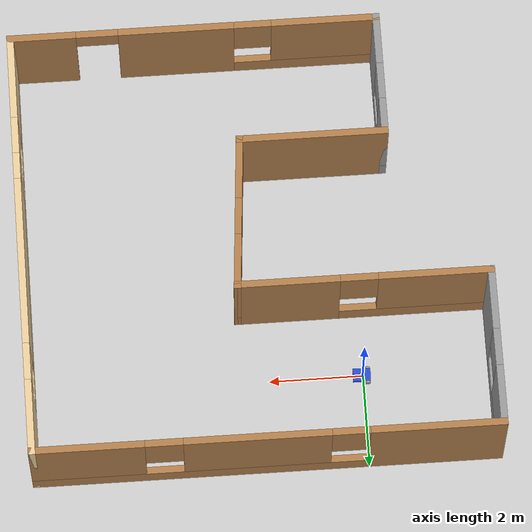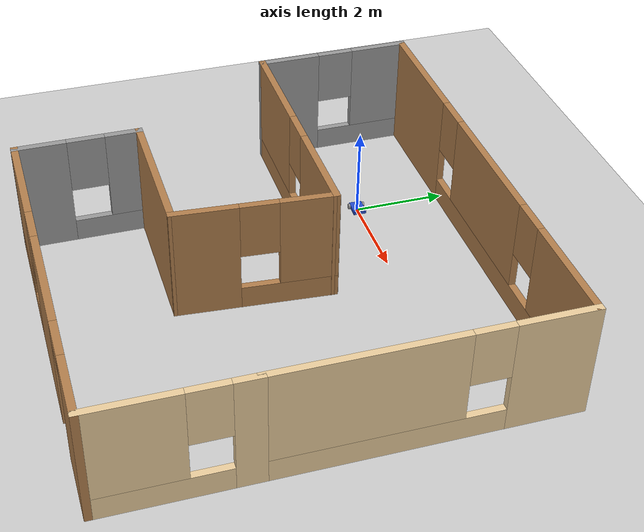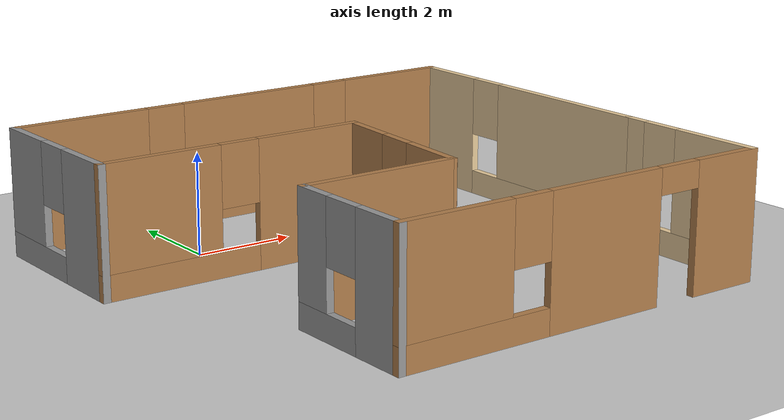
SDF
<sdf version="1.6">
 <world name="default">
  <light name="sun" type="directional">
   <pose>0 0 10 0 -0 0</pose>
   <diffuse>0.8 0.8 0.8 1</diffuse>
   <specular>0.1 0.1 0.1 1</specular>
   <attenuation>
    <range>1000</range>
    <constant>0.9</constant>
    <linear>0.01</linear>
    <quadratic>0.001</quadratic>
   </attenuation>
   <direction>-0.5 0.5 -1</direction>
  </light>
  <model name="ground_plane">
   <static>1</static>
   <link name="link">
    <collision name="collision">
     <geometry><plane><normal>0 0 1</normal><size>100 100</size></plane></geometry>
     <surface><friction><ode><mu>100</mu><mu2>50</mu2></ode></friction></surface>
    </collision>
    <visual name="visual">
     <cast_shadows>0</cast_shadows>
     <geometry><plane><normal>0 0 1</normal><size>100 100</size></plane></geometry>
     <material>
      <script><uri>file://media/materials/scripts/gazebo.material</uri><name>Gazebo/Grey</name></script>
     </material>
    </visual>
   </link>
  </model>
  <gravity>0 0 -9.8</gravity>
  <magnetic_field>6e-06 2.3e-05 -4.2e-05</magnetic_field>
  <atmosphere type="adiabatic"/>
  <physics name="default_physics" default="0" type="ode">
   <max_step_size>0.001</max_step_size>
   <real_time_factor>1</real_time_factor>
   <real_time_update_rate>1000</real_time_update_rate>
  </physics>
  <scene><ambient>0.4 0.4 0.4 1</ambient><background>0.7 0.7 0.7 1</background><shadows>1</shadows></scene>
  <spherical_coordinates>
   <surface_model>EARTH_WGS84</surface_model>
   <latitude_deg>0</latitude_deg>
   <longitude_deg>0</longitude_deg>
   <elevation>0</elevation>
   <heading_deg>0</heading_deg>
  </spherical_coordinates>
  <model name="car">
   <link name="base_footprint">
    <inertial>
     <pose>0 0 0.076 0 -0 0</pose>
     <mass>20</mass>
     <inertia>
      <ixx>0.141333</ixx>
      <ixy>0</ixy>
      <ixz>0</ixz>
      <iyy>0.366293</iyy>
      <iyz>0</iyz>
      <izz>0.246293</izz>
     </inertia>
    </inertial>
    <collision name="base_footprint_fixed_joint_lump__base_link_collision">
     <pose>0 0 0.076 0 -0 0</pose>
     <geometry><box><size>0.376 0.28 0.08</size></box></geometry>
    </collision>
    <visual name="base_footprint_visual">
     <geometry><box><size>0.001 0.001 0.001</size></box></geometry>
     <material><script><uri>__default__</uri><name>__default__</name></script></material>
    </visual>
    <visual name="base_footprint_fixed_joint_lump__base_link_visual_1">
     <pose>0 0 0.076 0 -0 0</pose>
     <geometry><box><size>0.376 0.28 0.08</size></box></geometry>
     <material>
      <script><name>Gazebo/Blue</name><uri>file://media/materials/scripts/gazebo.material</uri></script>
     </material>
    </visual>
   </link>
   <link name="front_caster_link">
    <pose>0.16 0 0.018 0 -0 0</pose>
    <inertial>
     <mass>0.5</mass>
     <inertia>
      <ixx>6.48e-05</ixx>
      <ixy>0</ixy>
      <ixz>0</ixz>
      <iyy>6.48e-05</iyy>
      <iyz>0</iyz>
      <izz>6.48e-05</izz>
     </inertia>
    </inertial>
    <collision name="front_caster_link_collision">
     <geometry><sphere><radius>0.018</radius></sphere></geometry>
    </collision>
    <visual name="front_caster_link_visual">
     <geometry><sphere><radius>0.018</radius></sphere></geometry>
     <material>
      <script><name>Gazebo/Black</name><uri>file://media/materials/scripts/gazebo.material</uri></script>
     </material>
    </visual>
   </link>
   <joint name="front_caster_joint" type="revolute">
    <child>front_caster_link</child>
    <parent>base_footprint</parent>
    <axis>
     <xyz>0 1 0</xyz>
     <limit><lower>-1e+16</lower><upper>1e+16</upper></limit>
     <dynamics><spring_reference>0</spring_reference><spring_stiffness>0</spring_stiffness></dynamics>
     <use_parent_model_frame>1</use_parent_model_frame>
    </axis>
   </joint>
   <link name="left_wheel_link">
    <pose>-0.12 -0.16 0.0625 0 -0 0</pose>
    <inertial>
     <mass>2</mass>
     <inertia>
      <ixx>0.00221979</ixx>
      <ixy>0</ixy>
      <ixz>0</ixz>
      <iyy>0.00221979</iyy>
      <iyz>0</iyz>
      <izz>0.00390625</izz>
     </inertia>
    </inertial>
    <collision name="left_wheel_link_collision">
     <pose>0 0 0 1.5708 -0 0</pose>
     <geometry><cylinder><length>0.04</length><radius>0.0625</radius></cylinder></geometry>
    </collision>
    <visual name="left_wheel_link_visual">
     <pose>0 0 0 1.5708 -0 0</pose>
     <geometry><cylinder><length>0.04</length><radius>0.0625</radius></cylinder></geometry>
     <material>
      <script><name>Gazebo/Gray</name><uri>file://media/materials/scripts/gazebo.material</uri></script>
     </material>
    </visual>
   </link>
   <joint name="left_wheel_joint" type="revolute">
    <child>left_wheel_link</child>
    <parent>base_footprint</parent>
    <axis>
     <xyz>0 1 0</xyz>
     <limit><lower>-1e+16</lower><upper>1e+16</upper></limit>
     <dynamics><spring_reference>0</spring_reference><spring_stiffness>0</spring_stiffness></dynamics>
     <use_parent_model_frame>1</use_parent_model_frame>
    </axis>
   </joint>
   <link name="right_wheel_link">
    <pose>-0.12 0.16 0.0625 0 -0 0</pose>
    <inertial>
     <mass>2</mass>
     <inertia>
      <ixx>0.00221979</ixx>
      <ixy>0</ixy>
      <ixz>0</ixz>
      <iyy>0.00221979</iyy>
      <iyz>0</iyz>
      <izz>0.00390625</izz>
     </inertia>
    </inertial>
    <collision name="right_wheel_link_collision">
     <pose>0 0 0 1.5708 -0 0</pose>
     <geometry><cylinder><length>0.04</length><radius>0.0625</radius></cylinder></geometry>
    </collision>
    <visual name="right_wheel_link_visual">
     <pose>0 0 0 1.5708 -0 0</pose>
     <geometry><cylinder><length>0.04</length><radius>0.0625</radius></cylinder></geometry>
     <material>
      <script><name>Gazebo/Gray</name><uri>file://media/materials/scripts/gazebo.material</uri></script>
     </material>
    </visual>
   </link>
   <joint name="right_wheel_joint" type="revolute">
    <child>right_wheel_link</child>
    <parent>base_footprint</parent>
    <axis>
     <xyz>0 1 0</xyz>
     <limit><lower>-1e+16</lower><upper>1e+16</upper></limit>
     <dynamics><spring_reference>0</spring_reference><spring_stiffness>0</spring_stiffness></dynamics>
     <use_parent_model_frame>1</use_parent_model_frame>
    </axis>
   </joint>
   <static>0</static>
   <plugin name="differential_drive_controller" filename="libgazebo_ros_diff_drive.so">
    <rosDebugLevel>Debug</rosDebugLevel>
    <publishWheelTF>true</publishWheelTF>
    <robotNamespace>/</robotNamespace>
    <publishTf>1</publishTf>
    <publishWheelJointState>true</publishWheelJointState>
    <alwaysOn>true</alwaysOn>
    <updateRate>100.0</updateRate>
    <legacyMode>true</legacyMode>
    <leftJoint>left_wheel_joint</leftJoint>
    <rightJoint>right_wheel_joint</rightJoint>
    <wheelSeparation>0.32</wheelSeparation>
    <wheelDiameter>0.125</wheelDiameter>
    <broadcastTF>1</broadcastTF>
    <wheelTorque>30</wheelTorque>
    <wheelAcceleration>1.8</wheelAcceleration>
    <commandTopic>cmd_vel</commandTopic>
    <odometryFrame>odom</odometryFrame>
    <odometryTopic>odom</odometryTopic>
    <robotBaseFrame>base_footprint</robotBaseFrame>
   </plugin>
   <pose>0.023023 -0.001423 0 0 3e-06 -0.025508</pose>
  </model>
  <model name="room1.world">
   <pose>2.165 -2.66 0 0 -0 0</pose>
   <link name="Wall_0">
    <pose>-2.25 1.25 0 0 -0 3.14159</pose>
    <visual name="Wall_0_Visual_0">
     <pose>-1.62845 0 1.25 0 -0 0</pose>
     <geometry><box><size>2.2431 0.15 2.5</size></box></geometry>
     <material>
      <script><uri>file://media/materials/scripts/gazebo.material</uri><name>Gazebo/Wood</name></script>
      <ambient>1 1 1 1</ambient>
     </material>
    </visual>
    <collision name="Wall_0_Collision_0">
     <geometry><box><size>2.2431 0.15 2.5</size></box></geometry>
     <pose>-1.62845 0 1.25 0 -0 0</pose>
    </collision>
    <visual name="Wall_0_Visual_1">
     <pose>1.12155 0 0.25 0 -0 0</pose>
     <geometry><box><size>3.2569 0.15 0.5</size></box></geometry>
     <material>
      <script><uri>file://media/materials/scripts/gazebo.material</uri><name>Gazebo/Wood</name></script>
      <ambient>1 1 1 1</ambient>
     </material>
    </visual>
    <collision name="Wall_0_Collision_1">
     <geometry><box><size>3.2569 0.15 0.5</size></box></geometry>
     <pose>1.12155 0 0.25 0 -0 0</pose>
    </collision>
    <visual name="Wall_0_Visual_2">
     <pose>1.52155 0 1.5 0 -0 0</pose>
     <geometry><box><size>2.4569 0.15 2</size></box></geometry>
     <material>
      <script><uri>file://media/materials/scripts/gazebo.material</uri><name>Gazebo/Wood</name></script>
      <ambient>1 1 1 1</ambient>
     </material>
    </visual>
    <collision name="Wall_0_Collision_2">
     <geometry><box><size>2.4569 0.15 2</size></box></geometry>
     <pose>1.52155 0 1.5 0 -0 0</pose>
    </collision>
    <visual name="Wall_0_Visual_3">
     <pose>-0.106896 0 1.9 0 -0 0</pose>
     <geometry><box><size>0.8 0.15 1.2</size></box></geometry>
     <material>
      <script><uri>file://media/materials/scripts/gazebo.material</uri><name>Gazebo/Wood</name></script>
      <ambient>1 1 1 1</ambient>
     </material>
    </visual>
    <collision name="Wall_0_Collision_3">
     <geometry><box><size>0.8 0.15 1.2</size></box></geometry>
     <pose>-0.106896 0 1.9 0 -0 0</pose>
    </collision>
   </link>
   <link name="Wall_10">
    <pose>0.3 -0.375 0 0 -0 1.49402</pose>
    <visual name="Wall_10_Visual_0">
     <pose>-1.0038 0 1.25 0 -0 0</pose>
     <geometry><box><size>1.40199 0.15 2.5</size></box></geometry>
     <material>
      <script><uri>file://media/materials/scripts/gazebo.material</uri><name>Gazebo/Wood</name></script>
      <ambient>1 1 1 1</ambient>
     </material>
    </visual>
    <collision name="Wall_10_Collision_0">
     <geometry><box><size>1.40199 0.15 2.5</size></box></geometry>
     <pose>-1.0038 0 1.25 0 -0 0</pose>
    </collision>
    <visual name="Wall_10_Visual_1">
     <pose>0.700996 0 0.25 0 -0 0</pose>
     <geometry><box><size>2.00761 0.15 0.5</size></box></geometry>
     <material>
      <script><uri>file://media/materials/scripts/gazebo.material</uri><name>Gazebo/Wood</name></script>
      <ambient>1 1 1 1</ambient>
     </material>
    </visual>
    <collision name="Wall_10_Collision_1">
     <geometry><box><size>2.00761 0.15 0.5</size></box></geometry>
     <pose>0.700996 0 0.25 0 -0 0</pose>
    </collision>
    <visual name="Wall_10_Visual_2">
     <pose>1.101 0 1.5 0 -0 0</pose>
     <geometry><box><size>1.20761 0.15 2</size></box></geometry>
     <material>
      <script><uri>file://media/materials/scripts/gazebo.material</uri><name>Gazebo/Wood</name></script>
      <ambient>1 1 1 1</ambient>
     </material>
    </visual>
    <collision name="Wall_10_Collision_2">
     <geometry><box><size>1.20761 0.15 2</size></box></geometry>
     <pose>1.101 0 1.5 0 -0 0</pose>
    </collision>
    <visual name="Wall_10_Visual_3">
     <pose>0.097192 0 1.9 0 -0 0</pose>
     <geometry><box><size>0.8 0.15 1.2</size></box></geometry>
     <material>
      <script><uri>file://media/materials/scripts/gazebo.material</uri><name>Gazebo/Wood</name></script>
      <ambient>1 1 1 1</ambient>
     </material>
    </visual>
    <collision name="Wall_10_Collision_3">
     <geometry><box><size>0.8 0.15 1.2</size></box></geometry>
     <pose>0.097192 0 1.9 0 -0 0</pose>
    </collision>
   </link>
   <link name="Wall_2">
    <pose>-4.925 2.925 0 0 -0 1.5708</pose>
    <visual name="Wall_2_Visual_0">
     <pose>-1.05503 0 1.25 0 -0 0</pose>
     <geometry><box><size>1.38994 0.15 2.5</size></box></geometry>
     <material>
      <script><uri>file://media/materials/scripts/gazebo.material</uri><name>Gazebo/Grey</name></script>
      <ambient>1 1 1 1</ambient>
     </material>
    </visual>
    <collision name="Wall_2_Collision_0">
     <geometry><box><size>1.38994 0.15 2.5</size></box></geometry>
     <pose>-1.05503 0 1.25 0 -0 0</pose>
    </collision>
    <visual name="Wall_2_Visual_1">
     <pose>0.694969 0 0.25 0 -0 0</pose>
     <geometry><box><size>2.11006 0.15 0.5</size></box></geometry>
     <material>
      <script><uri>file://media/materials/scripts/gazebo.material</uri><name>Gazebo/Grey</name></script>
      <ambient>1 1 1 1</ambient>
     </material>
    </visual>
    <collision name="Wall_2_Collision_1">
     <geometry><box><size>2.11006 0.15 0.5</size></box></geometry>
     <pose>0.694969 0 0.25 0 -0 0</pose>
    </collision>
    <visual name="Wall_2_Visual_2">
     <pose>1.09497 0 1.5 0 -0 0</pose>
     <geometry><box><size>1.31006 0.15 2</size></box></geometry>
     <material>
      <script><uri>file://media/materials/scripts/gazebo.material</uri><name>Gazebo/Grey</name></script>
      <ambient>1 1 1 1</ambient>
     </material>
    </visual>
    <collision name="Wall_2_Collision_2">
     <geometry><box><size>1.31006 0.15 2</size></box></geometry>
     <pose>1.09497 0 1.5 0 -0 0</pose>
    </collision>
    <visual name="Wall_2_Visual_3">
     <pose>0.039938 0 1.9 0 -0 0</pose>
     <geometry><box><size>0.8 0.15 1.2</size></box></geometry>
     <material>
      <script><uri>file://media/materials/scripts/gazebo.material</uri><name>Gazebo/Grey</name></script>
      <ambient>1 1 1 1</ambient>
     </material>
    </visual>
    <collision name="Wall_2_Collision_3">
     <geometry><box><size>0.8 0.15 1.2</size></box></geometry>
     <pose>0.039938 0 1.9 0 -0 0</pose>
    </collision>
   </link>
   <link name="Wall_3">
    <pose>0 4.6 0 0 -0 0</pose>
    <visual name="Wall_3_Visual_0">
     <pose>-3.56813 0 1.25 0 -0 0</pose>
     <geometry><box><size>2.86375 0.15 2.5</size></box></geometry>
     <material>
      <script><uri>file://media/materials/scripts/gazebo.material</uri><name>Gazebo/Wood</name></script>
      <ambient>1 1 1 1</ambient>
     </material>
    </visual>
    <collision name="Wall_3_Collision_0">
     <geometry><box><size>2.86375 0.15 2.5</size></box></geometry>
     <pose>-3.56813 0 1.25 0 -0 0</pose>
    </collision>
    <visual name="Wall_3_Visual_1">
     <pose>1.43187 0 0.25 0 -0 0</pose>
     <geometry><box><size>7.13625 0.15 0.5</size></box></geometry>
     <material>
      <script><uri>file://media/materials/scripts/gazebo.material</uri><name>Gazebo/Wood</name></script>
      <ambient>1 1 1 1</ambient>
     </material>
    </visual>
    <collision name="Wall_3_Collision_1">
     <geometry><box><size>7.13625 0.15 0.5</size></box></geometry>
     <pose>1.43187 0 0.25 0 -0 0</pose>
    </collision>
    <visual name="Wall_3_Visual_2">
     <pose>0.216644 0 1.5 0 -0 0</pose>
     <geometry><box><size>3.10579 0.15 2</size></box></geometry>
     <material>
      <script><uri>file://media/materials/scripts/gazebo.material</uri><name>Gazebo/Wood</name></script>
      <ambient>1 1 1 1</ambient>
     </material>
    </visual>
    <collision name="Wall_3_Collision_2">
     <geometry><box><size>3.10579 0.15 2</size></box></geometry>
     <pose>0.216644 0 1.5 0 -0 0</pose>
    </collision>
    <visual name="Wall_3_Visual_3">
     <pose>3.78477 0 1.5 0 -0 0</pose>
     <geometry><box><size>2.43046 0.15 2</size></box></geometry>
     <material>
      <script><uri>file://media/materials/scripts/gazebo.material</uri><name>Gazebo/Wood</name></script>
      <ambient>1 1 1 1</ambient>
     </material>
    </visual>
    <collision name="Wall_3_Collision_3">
     <geometry><box><size>2.43046 0.15 2</size></box></geometry>
     <pose>3.78477 0 1.5 0 -0 0</pose>
    </collision>
    <visual name="Wall_3_Visual_4">
     <pose>-1.73625 0 1.9 0 -0 0</pose>
     <geometry><box><size>0.8 0.15 1.2</size></box></geometry>
     <material>
      <script><uri>file://media/materials/scripts/gazebo.material</uri><name>Gazebo/Wood</name></script>
      <ambient>1 1 1 1</ambient>
     </material>
    </visual>
    <collision name="Wall_3_Collision_4">
     <geometry><box><size>0.8 0.15 1.2</size></box></geometry>
     <pose>-1.73625 0 1.9 0 -0 0</pose>
    </collision>
    <visual name="Wall_3_Visual_5">
     <pose>2.16954 0 1.9 0 -0 0</pose>
     <geometry><box><size>0.8 0.15 1.2</size></box></geometry>
     <material>
      <script><uri>file://media/materials/scripts/gazebo.material</uri><name>Gazebo/Wood</name></script>
      <ambient>1 1 1 1</ambient>
     </material>
    </visual>
    <collision name="Wall_3_Collision_5">
     <geometry><box><size>0.8 0.15 1.2</size></box></geometry>
     <pose>2.16954 0 1.9 0 -0 0</pose>
    </collision>
   </link>
   <link name="Wall_5">
    <pose>4.925 1.55 0 0 0 -1.5708</pose>
    <visual name="Wall_5_Visual_0">
     <pose>-2.30723 0 1.25 0 -0 0</pose>
     <geometry><box><size>1.63554 0.15 2.5</size></box></geometry>
     <material>
      <script><uri>file://media/materials/scripts/gazebo.material</uri><name>Gazebo/Grey</name></script>
      <ambient>0.921569 0.807843 0.615686 1</ambient>
     </material>
    </visual>
    <collision name="Wall_5_Collision_0">
     <geometry><box><size>1.63554 0.15 2.5</size></box></geometry>
     <pose>-2.30723 0 1.25 0 -0 0</pose>
    </collision>
    <visual name="Wall_5_Visual_1">
     <pose>0.817772 0 0.25 0 -0 0</pose>
     <geometry><box><size>4.61446 0.15 0.5</size></box></geometry>
     <material>
      <script><uri>file://media/materials/scripts/gazebo.material</uri><name>Gazebo/Grey</name></script>
      <ambient>0.921569 0.807843 0.615686 1</ambient>
     </material>
    </visual>
    <collision name="Wall_5_Collision_1">
     <geometry><box><size>4.61446 0.15 0.5</size></box></geometry>
     <pose>0.817772 0 0.25 0 -0 0</pose>
    </collision>
    <visual name="Wall_5_Visual_2">
     <pose>1.21777 0 1.5 0 -0 0</pose>
     <geometry><box><size>3.81446 0.15 2</size></box></geometry>
     <material>
      <script><uri>file://media/materials/scripts/gazebo.material</uri><name>Gazebo/Grey</name></script>
      <ambient>0.921569 0.807843 0.615686 1</ambient>
     </material>
    </visual>
    <collision name="Wall_5_Collision_2">
     <geometry><box><size>3.81446 0.15 2</size></box></geometry>
     <pose>1.21777 0 1.5 0 -0 0</pose>
    </collision>
    <visual name="Wall_5_Visual_3">
     <pose>-1.08946 0 1.9 0 -0 0</pose>
     <geometry><box><size>0.8 0.15 1.2</size></box></geometry>
     <material>
      <script><uri>file://media/materials/scripts/gazebo.material</uri><name>Gazebo/Grey</name></script>
      <ambient>0.921569 0.807843 0.615686 1</ambient>
     </material>
    </visual>
    <collision name="Wall_5_Collision_3">
     <geometry><box><size>0.8 0.15 1.2</size></box></geometry>
     <pose>-1.08946 0 1.9 0 -0 0</pose>
    </collision>
   </link>
   <link name="Wall_6">
    <pose>4.925 -3.05 0 0 0 -1.5708</pose>
    <visual name="Wall_6_Visual_0">
     <pose>-1.33474 0 1.25 0 -0 0</pose>
     <geometry><box><size>0.580523 0.15 2.5</size></box></geometry>
     <material>
      <script><uri>file://media/materials/scripts/gazebo.material</uri><name>Gazebo/Grey</name></script>
      <ambient>0.921569 0.807843 0.615686 1</ambient>
     </material>
    </visual>
    <collision name="Wall_6_Collision_0">
     <geometry><box><size>0.580523 0.15 2.5</size></box></geometry>
     <pose>-1.33474 0 1.25 0 -0 0</pose>
    </collision>
    <visual name="Wall_6_Visual_1">
     <pose>0.290261 0 0.25 0 -0 0</pose>
     <geometry><box><size>2.66948 0.15 0.5</size></box></geometry>
     <material>
      <script><uri>file://media/materials/scripts/gazebo.material</uri><name>Gazebo/Grey</name></script>
      <ambient>0.921569 0.807843 0.615686 1</ambient>
     </material>
    </visual>
    <collision name="Wall_6_Collision_1">
     <geometry><box><size>2.66948 0.15 0.5</size></box></geometry>
     <pose>0.290261 0 0.25 0 -0 0</pose>
    </collision>
    <visual name="Wall_6_Visual_2">
     <pose>0.690261 0 1.5 0 -0 0</pose>
     <geometry><box><size>1.86948 0.15 2</size></box></geometry>
     <material>
      <script><uri>file://media/materials/scripts/gazebo.material</uri><name>Gazebo/Grey</name></script>
      <ambient>0.921569 0.807843 0.615686 1</ambient>
     </material>
    </visual>
    <collision name="Wall_6_Collision_2">
     <geometry><box><size>1.86948 0.15 2</size></box></geometry>
     <pose>0.690261 0 1.5 0 -0 0</pose>
    </collision>
    <visual name="Wall_6_Visual_3">
     <pose>-0.644477 0 1.9 0 -0 0</pose>
     <geometry><box><size>0.8 0.15 1.2</size></box></geometry>
     <material>
      <script><uri>file://media/materials/scripts/gazebo.material</uri><name>Gazebo/Grey</name></script>
      <ambient>0.921569 0.807843 0.615686 1</ambient>
     </material>
    </visual>
    <collision name="Wall_6_Collision_3">
     <geometry><box><size>0.8 0.15 1.2</size></box></geometry>
     <pose>-0.644477 0 1.9 0 -0 0</pose>
    </collision>
   </link>
   <link name="Wall_7">
    <pose>1 -4.6 0 0 -0 3.14159</pose>
    <visual name="Wall_7_Visual_0">
     <pose>-3.25731 0 1.25 0 -0 0</pose>
     <geometry><box><size>1.48538 0.15 2.5</size></box></geometry>
     <material>
      <script><uri>file://media/materials/scripts/gazebo.material</uri><name>Gazebo/Wood</name></script>
      <ambient>1 1 1 1</ambient>
     </material>
    </visual>
    <collision name="Wall_7_Collision_0">
     <geometry><box><size>1.48538 0.15 2.5</size></box></geometry>
     <pose>-3.25731 0 1.25 0 -0 0</pose>
    </collision>
    <visual name="Wall_7_Visual_1">
     <pose>-0.371518 0 1.25 0 -0 0</pose>
     <geometry><box><size>2.48619 0.15 2.5</size></box></geometry>
     <material>
      <script><uri>file://media/materials/scripts/gazebo.material</uri><name>Gazebo/Wood</name></script>
      <ambient>1 1 1 1</ambient>
     </material>
    </visual>
    <collision name="Wall_7_Collision_1">
     <geometry><box><size>2.48619 0.15 2.5</size></box></geometry>
     <pose>-0.371518 0 1.25 0 -0 0</pose>
    </collision>
    <visual name="Wall_7_Visual_2">
     <pose>2.43579 0 0.25 0 -0 0</pose>
     <geometry><box><size>3.12842 0.15 0.5</size></box></geometry>
     <material>
      <script><uri>file://media/materials/scripts/gazebo.material</uri><name>Gazebo/Wood</name></script>
      <ambient>1 1 1 1</ambient>
     </material>
    </visual>
    <collision name="Wall_7_Collision_2">
     <geometry><box><size>3.12842 0.15 0.5</size></box></geometry>
     <pose>2.43579 0 0.25 0 -0 0</pose>
    </collision>
    <visual name="Wall_7_Visual_3">
     <pose>2.83579 0 1.5 0 -0 0</pose>
     <geometry><box><size>2.32842 0.15 2</size></box></geometry>
     <material>
      <script><uri>file://media/materials/scripts/gazebo.material</uri><name>Gazebo/Wood</name></script>
      <ambient>1 1 1 1</ambient>
     </material>
    </visual>
    <collision name="Wall_7_Collision_3">
     <geometry><box><size>2.32842 0.15 2</size></box></geometry>
     <pose>2.83579 0 1.5 0 -0 0</pose>
    </collision>
    <visual name="Wall_7_Visual_4">
     <pose>1.27158 0 1.9 0 -0 0</pose>
     <geometry><box><size>0.8 0.15 1.2</size></box></geometry>
     <material>
      <script><uri>file://media/materials/scripts/gazebo.material</uri><name>Gazebo/Wood</name></script>
      <ambient>1 1 1 1</ambient>
     </material>
    </visual>
    <collision name="Wall_7_Collision_4">
     <geometry><box><size>0.8 0.15 1.2</size></box></geometry>
     <pose>1.27158 0 1.9 0 -0 0</pose>
    </collision>
    <visual name="Wall_7_Visual_5">
     <pose>-2.06461 0 2.25 0 -0 0</pose>
     <geometry><box><size>0.9 0.15 0.5</size></box></geometry>
     <material>
      <script><uri>file://media/materials/scripts/gazebo.material</uri><name>Gazebo/Wood</name></script>
      <ambient>1 1 1 1</ambient>
     </material>
    </visual>
    <collision name="Wall_7_Collision_5">
     <geometry><box><size>0.9 0.15 0.5</size></box></geometry>
     <pose>-2.06461 0 2.25 0 -0 0</pose>
    </collision>
   </link>
   <link name="Wall_8">
    <pose>-2.925 -3.3 0 0 -0 1.5708</pose>
    <visual name="Wall_8_Visual_0">
     <pose>-0.806429 0 1.25 0 -0 0</pose>
     <geometry><box><size>1.13714 0.15 2.5</size></box></geometry>
     <material>
      <script><uri>file://media/materials/scripts/gazebo.material</uri><name>Gazebo/Grey</name></script>
      <ambient>1 1 1 1</ambient>
     </material>
    </visual>
    <collision name="Wall_8_Collision_0">
     <geometry><box><size>1.13714 0.15 2.5</size></box></geometry>
     <pose>-0.806429 0 1.25 0 -0 0</pose>
    </collision>
    <visual name="Wall_8_Visual_1">
     <pose>0.568571 0 0.25 0 -0 0</pose>
     <geometry><box><size>1.61286 0.15 0.5</size></box></geometry>
     <material>
      <script><uri>file://media/materials/scripts/gazebo.material</uri><name>Gazebo/Grey</name></script>
      <ambient>1 1 1 1</ambient>
     </material>
    </visual>
    <collision name="Wall_8_Collision_1">
     <geometry><box><size>1.61286 0.15 0.5</size></box></geometry>
     <pose>0.568571 0 0.25 0 -0 0</pose>
    </collision>
    <visual name="Wall_8_Visual_2">
     <pose>0.968571 0 1.5 0 -0 0</pose>
     <geometry><box><size>0.812858 0.15 2</size></box></geometry>
     <material>
      <script><uri>file://media/materials/scripts/gazebo.material</uri><name>Gazebo/Grey</name></script>
      <ambient>1 1 1 1</ambient>
     </material>
    </visual>
    <collision name="Wall_8_Collision_2">
     <geometry><box><size>0.812858 0.15 2</size></box></geometry>
     <pose>0.968571 0 1.5 0 -0 0</pose>
    </collision>
    <visual name="Wall_8_Visual_3">
     <pose>0.162142 0 1.9 0 -0 0</pose>
     <geometry><box><size>0.8 0.15 1.2</size></box></geometry>
     <material>
      <script><uri>file://media/materials/scripts/gazebo.material</uri><name>Gazebo/Grey</name></script>
      <ambient>1 1 1 1</ambient>
     </material>
    </visual>
    <collision name="Wall_8_Collision_3">
     <geometry><box><size>0.8 0.15 1.2</size></box></geometry>
     <pose>0.162142 0 1.9 0 -0 0</pose>
    </collision>
   </link>
   <link name="Wall_9">
    <collision name="Wall_9_Collision">
     <geometry><box><size>3.25 0.15 2.5</size></box></geometry>
     <pose>0 0 1.25 0 -0 0</pose>
    </collision>
    <visual name="Wall_9_Visual">
     <pose>0 0 1.25 0 -0 0</pose>
     <geometry><box><size>3.25 0.15 2.5</size></box></geometry>
     <material>
      <script><uri>file://media/materials/scripts/gazebo.material</uri><name>Gazebo/Wood</name></script>
      <ambient>1 1 1 1</ambient>
     </material>
    </visual>
    <pose>-1.375 -2 0 0 -0 0</pose>
   </link>
   <static>1</static>
  </model>
 </world>
</sdf>
